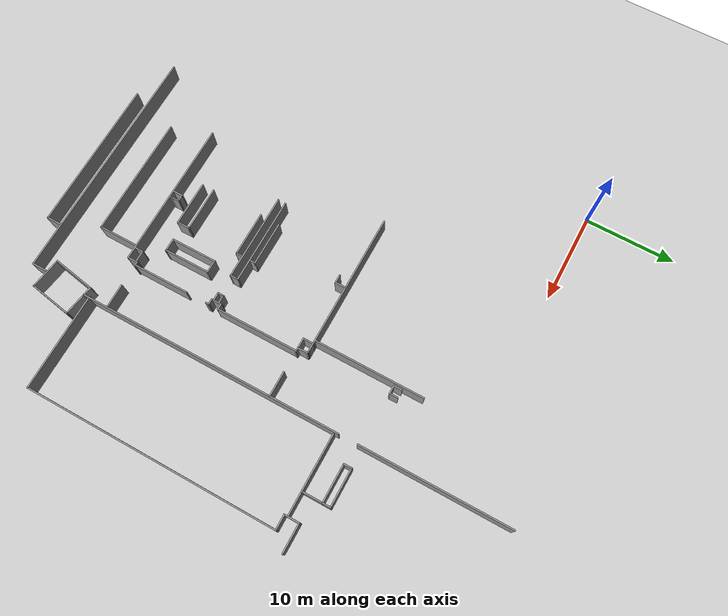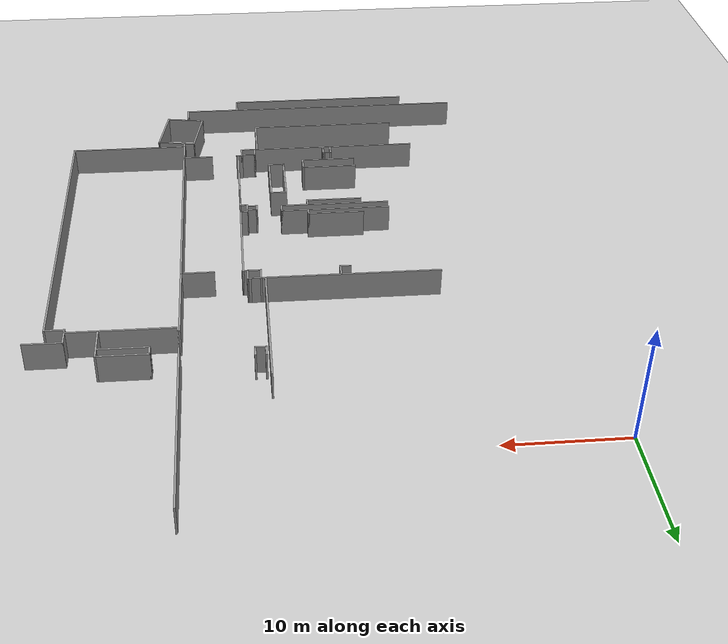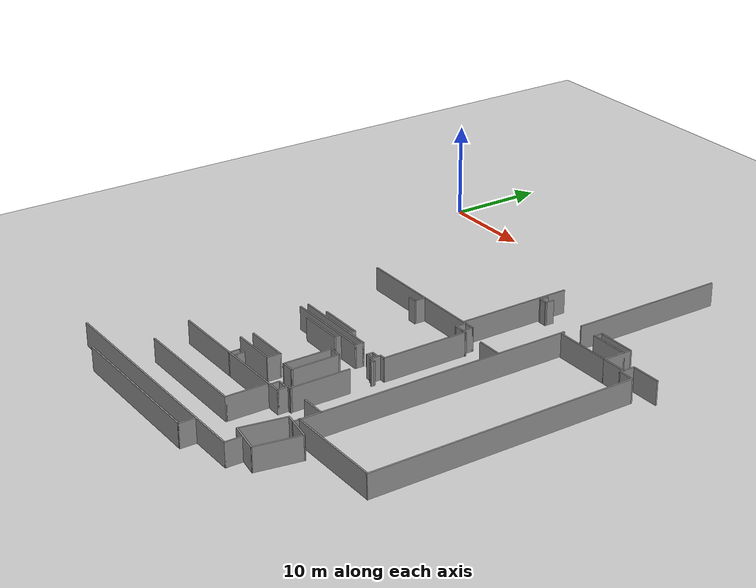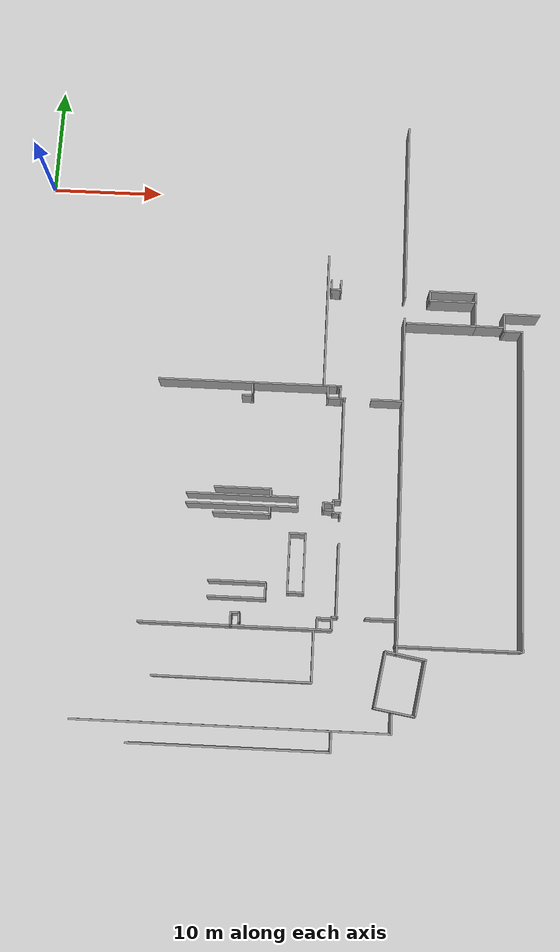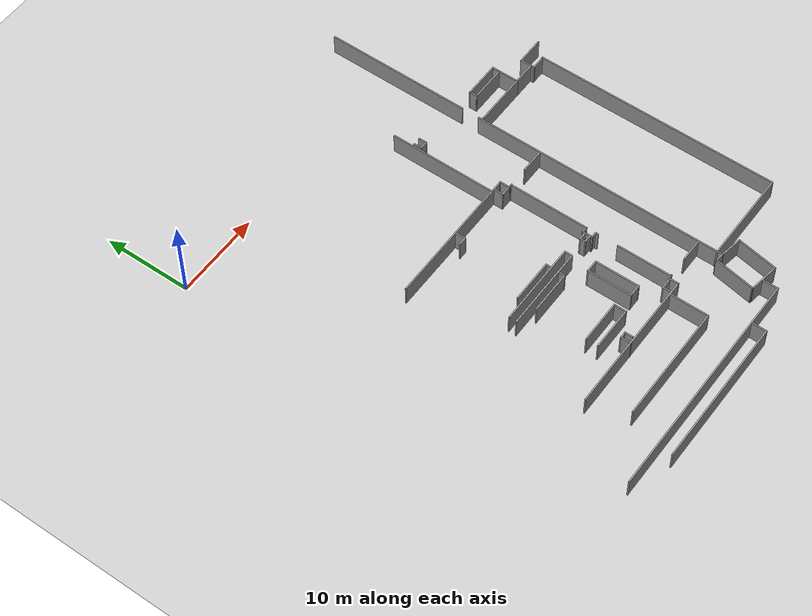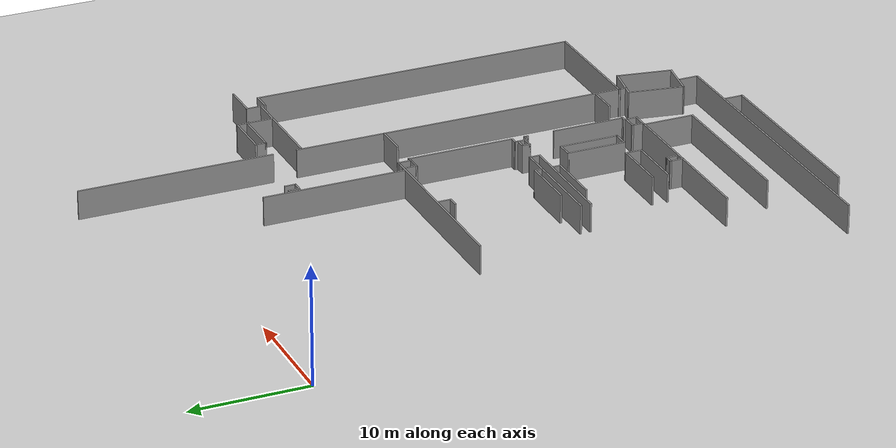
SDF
<sdf version="1.6">
 <world name="default">
  <model name="ground_plane">
   <static>1</static>
   <link name="link">
    <collision name="collision">
     <geometry><plane><normal>0 0 1</normal><size>100 100</size></plane></geometry>
     <surface><friction><ode><mu>100</mu><mu2>50</mu2></ode></friction></surface>
    </collision>
    <visual name="visual">
     <cast_shadows>0</cast_shadows>
     <geometry><plane><normal>0 0 1</normal><size>100 100</size></plane></geometry>
     <material>
      <script><uri>file://media/materials/scripts/gazebo.material</uri><name>Gazebo/Grey</name></script>
     </material>
    </visual>
   </link>
  </model>
  <model name="SEH_v11">
   <pose>0.537033 1.18809 0 0 -0 0</pose>
   <link name="Wall_114">
    <pose>32.5458 -18.3862 0 0 0 -1.5708</pose>
    <visual name="Wall_114_Visual_0">
     <pose>-15.5143 0 1.25 0 -0 0</pose>
     <geometry><box><size>16.7215 0.15 2.5</size></box></geometry>
     <material>
      <script><uri>file://media/materials/scripts/gazebo.material</uri><name>Gazebo/Grey</name></script>
      <ambient>1 1 1 1</ambient>
     </material>
     <meta><layer>0</layer></meta>
    </visual>
    <collision name="Wall_114_Collision_0">
     <geometry><box><size>16.7215 0.15 2.5</size></box></geometry>
     <pose>-15.5143 0 1.25 0 -0 0</pose>
    </collision>
    <visual name="Wall_114_Visual_1">
     <pose>9.36074 0 1.25 0 -0 0</pose>
     <geometry><box><size>29.0285 0.15 2.5</size></box></geometry>
     <material>
      <script><uri>file://media/materials/scripts/gazebo.material</uri><name>Gazebo/Grey</name></script>
      <ambient>1 1 1 1</ambient>
     </material>
     <meta><layer>0</layer></meta>
    </visual>
    <collision name="Wall_114_Collision_1">
     <geometry><box><size>29.0285 0.15 2.5</size></box></geometry>
     <pose>9.36074 0 1.25 0 -0 0</pose>
    </collision>
   </link>
   <link name="Wall_116">
    <collision name="Wall_116_Collision">
     <geometry><box><size>16 0.15 2.5</size></box></geometry>
     <pose>0 0 1.25 0 -0 0</pose>
    </collision>
    <visual name="Wall_116_Visual">
     <pose>0 0 1.25 0 -0 0</pose>
     <geometry><box><size>16 0.15 2.5</size></box></geometry>
     <material>
      <script><uri>file://media/materials/scripts/gazebo.material</uri><name>Gazebo/Grey</name></script>
      <ambient>1 1 1 1</ambient>
     </material>
     <meta><layer>0</layer></meta>
    </visual>
    <pose>18.846 -19.8363 0 0 -0 3.14159</pose>
   </link>
   <link name="Wall_127">
    <collision name="Wall_127_Collision">
     <geometry><box><size>16.5 0.15 2.5</size></box></geometry>
     <pose>0 0 1.25 0 -0 0</pose>
    </collision>
    <visual name="Wall_127_Visual">
     <pose>0 0 1.25 0 -0 0</pose>
     <geometry><box><size>16.5 0.15 2.5</size></box></geometry>
     <material>
      <script><uri>file://media/materials/scripts/gazebo.material</uri><name>Gazebo/Grey</name></script>
      <ambient>1 1 1 1</ambient>
     </material>
     <meta><layer>0</layer></meta>
    </visual>
    <pose>18.846 -41.0863 0 0 -0 0</pose>
   </link>
   <link name="Wall_128">
    <collision name="Wall_128_Collision">
     <geometry><box><size>1.25 0.15 2.5</size></box></geometry>
     <pose>0 0 1.25 0 -0 0</pose>
    </collision>
    <visual name="Wall_128_Visual">
     <pose>0 0 1.25 0 -0 0</pose>
     <geometry><box><size>1.25 0.15 2.5</size></box></geometry>
     <material>
      <script><uri>file://media/materials/scripts/gazebo.material</uri><name>Gazebo/Grey</name></script>
      <ambient>1 1 1 1</ambient>
     </material>
     <meta><layer>0</layer></meta>
    </visual>
    <pose>27.021 -40.5363 0 0 -0 1.5708</pose>
   </link>
   <link name="Wall_131">
    <collision name="Wall_131_Collision">
     <geometry><box><size>0.5 0.15 2.5</size></box></geometry>
     <pose>0 0 1.25 0 -0 0</pose>
    </collision>
    <visual name="Wall_131_Visual">
     <pose>0 0 1.25 0 -0 0</pose>
     <geometry><box><size>0.5 0.15 2.5</size></box></geometry>
     <material>
      <script><uri>file://media/materials/scripts/gazebo.material</uri><name>Gazebo/Grey</name></script>
      <ambient>1 1 1 1</ambient>
     </material>
     <meta><layer>0</layer></meta>
    </visual>
    <pose>27.196 -39.9863 0 0 -0 0</pose>
   </link>
   <link name="Wall_132">
    <pose>27.371 -35.5613 0 0 -0 1.5708</pose>
    <visual name="Wall_132_Visual_0">
     <pose>-1.34301 0 1.25 0 -0 0</pose>
     <geometry><box><size>6.31398 0.15 2.5</size></box></geometry>
     <material>
      <script><uri>file://media/materials/scripts/gazebo.material</uri><name>Gazebo/Grey</name></script>
      <ambient>1 1 1 1</ambient>
     </material>
     <meta><layer>0</layer></meta>
    </visual>
    <collision name="Wall_132_Collision_0">
     <geometry><box><size>6.31398 0.15 2.5</size></box></geometry>
     <pose>-1.34301 0 1.25 0 -0 0</pose>
    </collision>
    <visual name="Wall_132_Visual_1">
     <pose>4.28349 0 1.25 0 -0 0</pose>
     <geometry><box><size>0.433021 0.15 2.5</size></box></geometry>
     <material>
      <script><uri>file://media/materials/scripts/gazebo.material</uri><name>Gazebo/Grey</name></script>
      <ambient>1 1 1 1</ambient>
     </material>
     <meta><layer>0</layer></meta>
    </visual>
    <collision name="Wall_132_Collision_1">
     <geometry><box><size>0.433021 0.15 2.5</size></box></geometry>
     <pose>4.28349 0 1.25 0 -0 0</pose>
    </collision>
   </link>
   <link name="Wall_133">
    <collision name="Wall_133_Collision">
     <geometry><box><size>0.75 0.15 2.5</size></box></geometry>
     <pose>0 0 1.25 0 -0 0</pose>
    </collision>
    <visual name="Wall_133_Visual">
     <pose>0 0 1.25 0 -0 0</pose>
     <geometry><box><size>0.75 0.15 2.5</size></box></geometry>
     <material>
      <script><uri>file://media/materials/scripts/gazebo.material</uri><name>Gazebo/Grey</name></script>
      <ambient>1 1 1 1</ambient>
     </material>
     <meta><layer>0</layer></meta>
    </visual>
    <pose>27.071 -31.1363 0 0 -0 3.14159</pose>
   </link>
   <link name="Wall_134">
    <collision name="Wall_134_Collision">
     <geometry><box><size>1.25 0.15 2.5</size></box></geometry>
     <pose>0 0 1.25 0 -0 0</pose>
    </collision>
    <visual name="Wall_134_Visual">
     <pose>0 0 1.25 0 -0 0</pose>
     <geometry><box><size>1.25 0.15 2.5</size></box></geometry>
     <material>
      <script><uri>file://media/materials/scripts/gazebo.material</uri><name>Gazebo/Grey</name></script>
      <ambient>1 1 1 1</ambient>
     </material>
     <meta><layer>0</layer></meta>
    </visual>
    <pose>26.771 -30.5863 0 0 -0 1.5708</pose>
   </link>
   <link name="Wall_135">
    <collision name="Wall_135_Collision">
     <geometry><box><size>0.75 0.15 2.5</size></box></geometry>
     <pose>0 0 1.25 0 -0 0</pose>
    </collision>
    <visual name="Wall_135_Visual">
     <pose>0 0 1.25 0 -0 0</pose>
     <geometry><box><size>0.75 0.15 2.5</size></box></geometry>
     <material>
      <script><uri>file://media/materials/scripts/gazebo.material</uri><name>Gazebo/Grey</name></script>
      <ambient>1 1 1 1</ambient>
     </material>
     <meta><layer>0</layer></meta>
    </visual>
    <pose>27.071 -30.0362 0 0 -0 0.000333</pose>
   </link>
   <link name="Wall_147">
    <pose>29.921 -39.9863 0 0 -0 0</pose>
    <visual name="Wall_147_Visual_0">
     <pose>-2.49623 0 1.25 0 -0 0</pose>
     <geometry><box><size>0.257534 0.15 2.5</size></box></geometry>
     <material>
      <script><uri>file://media/materials/scripts/gazebo.material</uri><name>Gazebo/Grey</name></script>
      <ambient>1 1 1 1</ambient>
     </material>
     <meta><layer>0</layer></meta>
    </visual>
    <collision name="Wall_147_Collision_0">
     <geometry><box><size>0.257534 0.15 2.5</size></box></geometry>
     <pose>-2.49623 0 1.25 0 -0 0</pose>
    </collision>
    <visual name="Wall_147_Visual_1">
     <pose>1.27377 0 1.25 0 -0 0</pose>
     <geometry><box><size>2.70247 0.15 2.5</size></box></geometry>
     <material>
      <script><uri>file://media/materials/scripts/gazebo.material</uri><name>Gazebo/Grey</name></script>
      <ambient>1 1 1 1</ambient>
     </material>
     <meta><layer>0</layer></meta>
    </visual>
    <collision name="Wall_147_Collision_1">
     <geometry><box><size>2.70247 0.15 2.5</size></box></geometry>
     <pose>1.27377 0 1.25 0 -0 0</pose>
    </collision>
   </link>
   <link name="Wall_149">
    <collision name="Wall_149_Collision">
     <geometry><box><size>9.75 0.15 2.5</size></box></geometry>
     <pose>0 0 1.25 0 -0 0</pose>
    </collision>
    <visual name="Wall_149_Visual">
     <pose>0 0 1.25 0 -0 0</pose>
     <geometry><box><size>9.75 0.15 2.5</size></box></geometry>
     <material>
      <script><uri>file://media/materials/scripts/gazebo.material</uri><name>Gazebo/Grey</name></script>
      <ambient>1 1 1 1</ambient>
     </material>
     <meta><layer>0</layer></meta>
    </visual>
    <pose>18.8923 -29.9408 0 0 -0 0</pose>
   </link>
   <link name="Wall_150">
    <collision name="Wall_150_Collision">
     <geometry><box><size>1 0.15 2.5</size></box></geometry>
     <pose>0 0 1.25 0 -0 0</pose>
    </collision>
    <visual name="Wall_150_Visual">
     <pose>0 0 1.25 0 -0 0</pose>
     <geometry><box><size>1 0.15 2.5</size></box></geometry>
     <material>
      <script><uri>file://media/materials/scripts/gazebo.material</uri><name>Gazebo/Grey</name></script>
      <ambient>1 1 1 1</ambient>
     </material>
     <meta><layer>0</layer></meta>
    </visual>
    <pose>23.6923 -30.3658 0 0 0 -1.5708</pose>
   </link>
   <link name="Wall_151">
    <collision name="Wall_151_Collision">
     <geometry><box><size>9.75 0.15 2.5</size></box></geometry>
     <pose>0 0 1.25 0 -0 0</pose>
    </collision>
    <visual name="Wall_151_Visual">
     <pose>0 0 1.25 0 -0 0</pose>
     <geometry><box><size>9.75 0.15 2.5</size></box></geometry>
     <material>
      <script><uri>file://media/materials/scripts/gazebo.material</uri><name>Gazebo/Grey</name></script>
      <ambient>1 1 1 1</ambient>
     </material>
     <meta><layer>0</layer></meta>
    </visual>
    <pose>18.8923 -30.7908 0 0 -0 3.14159</pose>
   </link>
   <link name="Wall_155">
    <collision name="Wall_155_Collision">
     <geometry><box><size>5 0.15 2.5</size></box></geometry>
     <pose>0 0 1.25 0 -0 0</pose>
    </collision>
    <visual name="Wall_155_Visual">
     <pose>0 0 1.25 0 -0 0</pose>
     <geometry><box><size>5 0.15 2.5</size></box></geometry>
     <material>
      <script><uri>file://media/materials/scripts/gazebo.material</uri><name>Gazebo/Grey</name></script>
      <ambient>1 1 1 1</ambient>
     </material>
     <meta><layer>0</layer></meta>
    </visual>
    <pose>18.8999 -29.3084 0 0 -0 0</pose>
   </link>
   <link name="Wall_156">
    <collision name="Wall_156_Collision">
     <geometry><box><size>0.75 0.15 2.5</size></box></geometry>
     <pose>0 0 1.25 0 -0 0</pose>
    </collision>
    <visual name="Wall_156_Visual">
     <pose>0 0 1.25 0 -0 0</pose>
     <geometry><box><size>0.75 0.15 2.5</size></box></geometry>
     <material>
      <script><uri>file://media/materials/scripts/gazebo.material</uri><name>Gazebo/Grey</name></script>
      <ambient>1 1 1 1</ambient>
     </material>
     <meta><layer>0</layer></meta>
    </visual>
    <pose>21.3249 -29.6084 0 0 0 -1.5708</pose>
   </link>
   <link name="Wall_163">
    <collision name="Wall_163_Collision">
     <geometry><box><size>5 0.15 2.5</size></box></geometry>
     <pose>0 0 1.25 0 -0 0</pose>
    </collision>
    <visual name="Wall_163_Visual">
     <pose>0 0 1.25 0 -0 0</pose>
     <geometry><box><size>5 0.15 2.5</size></box></geometry>
     <material>
      <script><uri>file://media/materials/scripts/gazebo.material</uri><name>Gazebo/Grey</name></script>
      <ambient>1 1 1 1</ambient>
     </material>
     <meta><layer>0</layer></meta>
    </visual>
    <pose>18.8837 -31.5295 0 0 -0 0</pose>
   </link>
   <link name="Wall_164">
    <collision name="Wall_164_Collision">
     <geometry><box><size>0.75 0.15 2.5</size></box></geometry>
     <pose>0 0 1.25 0 -0 0</pose>
    </collision>
    <visual name="Wall_164_Visual">
     <pose>0 0 1.25 0 -0 0</pose>
     <geometry><box><size>0.75 0.15 2.5</size></box></geometry>
     <material>
      <script><uri>file://media/materials/scripts/gazebo.material</uri><name>Gazebo/Grey</name></script>
      <ambient>1 1 1 1</ambient>
     </material>
     <meta><layer>0</layer></meta>
    </visual>
    <pose>21.3087 -31.2295 0 0 -0 1.5708</pose>
   </link>
   <link name="Wall_168">
    <collision name="Wall_168_Collision">
     <geometry><box><size>12.25 0.15 2.5</size></box></geometry>
     <pose>0 0 1.25 0 -0 0</pose>
    </collision>
    <visual name="Wall_168_Visual">
     <pose>0 0 1.25 0 -0 0</pose>
     <geometry><box><size>12.25 0.15 2.5</size></box></geometry>
     <material>
      <script><uri>file://media/materials/scripts/gazebo.material</uri><name>Gazebo/Grey</name></script>
      <ambient>1 1 1 1</ambient>
     </material>
     <meta><layer>0</layer></meta>
    </visual>
    <pose>25.5461 -13.6978 0 0 0 -1.5708</pose>
   </link>
   <link name="Wall_17">
    <collision name="Wall_17_Collision">
     <geometry><box><size>4.84109 0.15 2.5</size></box></geometry>
     <pose>0 0 1.25 0 -0 0</pose>
    </collision>
    <visual name="Wall_17_Visual">
     <pose>0 0 1.25 0 -0 0</pose>
     <geometry><box><size>4.84109 0.15 2.5</size></box></geometry>
     <material>
      <script><uri>file://media/materials/scripts/gazebo.material</uri><name>Gazebo/Grey</name></script>
      <ambient>1 1 1 1</ambient>
     </material>
     <meta><layer>0</layer></meta>
    </visual>
    <pose>34.5912 -45.4997 0 0 -0 1.39856</pose>
   </link>
   <link name="Wall_177">
    <collision name="Wall_177_Collision">
     <geometry><box><size>1 0.15 2.5</size></box></geometry>
     <pose>0 0 1.25 0 -0 0</pose>
    </collision>
    <visual name="Wall_177_Visual">
     <pose>0 0 1.25 0 -0 0</pose>
     <geometry><box><size>1 0.15 2.5</size></box></geometry>
     <material>
      <script><uri>file://media/materials/scripts/gazebo.material</uri><name>Gazebo/Grey</name></script>
      <ambient>1 1 1 1</ambient>
     </material>
     <meta><layer>0</layer></meta>
    </visual>
    <pose>25.8684 -10.3601 0 0 0 -1.5708</pose>
   </link>
   <link name="Wall_178">
    <collision name="Wall_178_Collision">
     <geometry><box><size>1 0.15 2.5</size></box></geometry>
     <pose>0 0 1.25 0 -0 0</pose>
    </collision>
    <visual name="Wall_178_Visual">
     <pose>0 0 1.25 0 -0 0</pose>
     <geometry><box><size>1 0.15 2.5</size></box></geometry>
     <material>
      <script><uri>file://media/materials/scripts/gazebo.material</uri><name>Gazebo/Grey</name></script>
      <ambient>1 1 1 1</ambient>
     </material>
     <meta><layer>0</layer></meta>
    </visual>
    <pose>26.2934 -10.7851 0 0 -0 0</pose>
   </link>
   <link name="Wall_179">
    <collision name="Wall_179_Collision">
     <geometry><box><size>1 0.15 2.5</size></box></geometry>
     <pose>0 0 1.25 0 -0 0</pose>
    </collision>
    <visual name="Wall_179_Visual">
     <pose>0 0 1.25 0 -0 0</pose>
     <geometry><box><size>1 0.15 2.5</size></box></geometry>
     <material>
      <script><uri>file://media/materials/scripts/gazebo.material</uri><name>Gazebo/Grey</name></script>
      <ambient>1 1 1 1</ambient>
     </material>
     <meta><layer>0</layer></meta>
    </visual>
    <pose>26.7184 -10.3601 0 0 -0 1.5708</pose>
   </link>
   <link name="Wall_291">
    <collision name="Wall_291_Collision">
     <geometry><box><size>3.55888 0.15 2.5</size></box></geometry>
     <pose>0 0 1.25 0 -0 0</pose>
    </collision>
    <visual name="Wall_291_Visual">
     <pose>0 0 1.25 0 -0 0</pose>
     <geometry><box><size>3.55888 0.15 2.5</size></box></geometry>
     <material>
      <script><uri>file://media/materials/scripts/gazebo.material</uri><name>Gazebo/Grey</name></script>
      <ambient>1 1 1 1</ambient>
     </material>
     <meta><layer>0</layer></meta>
    </visual>
    <pose>32.5056 -47.545 0 0 -0 2.98521</pose>
   </link>
   <link name="Wall_293">
    <collision name="Wall_293_Collision">
     <geometry><box><size>3.55324 0.15 2.5</size></box></geometry>
     <pose>0 0 1.25 0 -0 0</pose>
    </collision>
    <visual name="Wall_293_Visual">
     <pose>0 0 1.25 0 -0 0</pose>
     <geometry><box><size>3.55324 0.15 2.5</size></box></geometry>
     <material>
      <script><uri>file://media/materials/scripts/gazebo.material</uri><name>Gazebo/Grey</name></script>
      <ambient>1 1 1 1</ambient>
     </material>
     <meta><layer>0</layer></meta>
    </visual>
    <pose>33.3149 -42.9084 0 0 0 -0.165528</pose>
   </link>
   <link name="Wall_295">
    <collision name="Wall_295_Collision">
     <geometry><box><size>4.87228 0.15 2.5</size></box></geometry>
     <pose>0 0 1.25 0 -0 0</pose>
    </collision>
    <visual name="Wall_295_Visual">
     <pose>0 0 1.25 0 -0 0</pose>
     <geometry><box><size>4.87228 0.15 2.5</size></box></geometry>
     <material>
      <script><uri>file://media/materials/scripts/gazebo.material</uri><name>Gazebo/Grey</name></script>
      <ambient>1 1 1 1</ambient>
     </material>
     <meta><layer>0</layer></meta>
    </visual>
    <pose>31.2292 -44.9538 0 0 0 -1.74415</pose>
   </link>
   <link name="Wall_297">
    <collision name="Wall_297_Collision">
     <geometry><box><size>0.75 0.15 2.5</size></box></geometry>
     <pose>0 0 1.25 0 -0 0</pose>
    </collision>
    <visual name="Wall_297_Visual">
     <pose>0 0 1.25 0 -0 0</pose>
     <geometry><box><size>0.75 0.15 2.5</size></box></geometry>
     <material>
      <script><uri>file://media/materials/scripts/gazebo.material</uri><name>Gazebo/Grey</name></script>
      <ambient>1 1 1 1</ambient>
     </material>
     <meta><layer>0</layer></meta>
    </visual>
    <pose>32.5458 -42.4862 0 0 0 -1.5708</pose>
   </link>
   <link name="Wall_322">
    <collision name="Wall_322_Collision">
     <geometry><box><size>9.25 0.15 2.5</size></box></geometry>
     <pose>0 0 1.25 0 -0 0</pose>
    </collision>
    <visual name="Wall_322_Visual">
     <pose>0 0 1.25 0 -0 0</pose>
     <geometry><box><size>9.25 0.15 2.5</size></box></geometry>
     <material>
      <script><uri>file://media/materials/scripts/gazebo.material</uri><name>Gazebo/Grey</name></script>
      <ambient>1 1 1 1</ambient>
     </material>
     <meta><layer>0</layer></meta>
    </visual>
    <pose>27.371 -25.4861 0 0 -0 1.5708</pose>
   </link>
   <link name="Wall_323">
    <collision name="Wall_323_Collision">
     <geometry><box><size>0.5 0.15 2.5</size></box></geometry>
     <pose>0 0 1.25 0 -0 0</pose>
    </collision>
    <visual name="Wall_323_Visual">
     <pose>0 0 1.25 0 -0 0</pose>
     <geometry><box><size>0.5 0.15 2.5</size></box></geometry>
     <material>
      <script><uri>file://media/materials/scripts/gazebo.material</uri><name>Gazebo/Grey</name></script>
      <ambient>1 1 1 1</ambient>
     </material>
     <meta><layer>0</layer></meta>
    </visual>
    <pose>27.196 -20.9361 0 0 -0 3.14159</pose>
   </link>
   <link name="Wall_324">
    <collision name="Wall_324_Collision">
     <geometry><box><size>1.25 0.15 2.5</size></box></geometry>
     <pose>0 0 1.25 0 -0 0</pose>
    </collision>
    <visual name="Wall_324_Visual">
     <pose>0 0 1.25 0 -0 0</pose>
     <geometry><box><size>1.25 0.15 2.5</size></box></geometry>
     <material>
      <script><uri>file://media/materials/scripts/gazebo.material</uri><name>Gazebo/Grey</name></script>
      <ambient>1 1 1 1</ambient>
     </material>
     <meta><layer>0</layer></meta>
    </visual>
    <pose>27.021 -20.3861 0 0 -0 1.5708</pose>
   </link>
   <link name="Wall_325">
    <collision name="Wall_325_Collision">
     <geometry><box><size>0.399926 0.15 2.5</size></box></geometry>
     <pose>0 0 1.25 0 -0 0</pose>
    </collision>
    <visual name="Wall_325_Visual">
     <pose>0 0 1.25 0 -0 0</pose>
     <geometry><box><size>0.399926 0.15 2.5</size></box></geometry>
     <material>
      <script><uri>file://media/materials/scripts/gazebo.material</uri><name>Gazebo/Grey</name></script>
      <ambient>1 1 1 1</ambient>
     </material>
     <meta><layer>0</layer></meta>
    </visual>
    <pose>26.896 -19.8362 0 0 0 -3.14079</pose>
   </link>
   <link name="Wall_329">
    <collision name="Wall_329_Collision">
     <geometry><box><size>1.25 0.15 2.5</size></box></geometry>
     <pose>0 0 1.25 0 -0 0</pose>
    </collision>
    <visual name="Wall_329_Visual">
     <pose>0 0 1.25 0 -0 0</pose>
     <geometry><box><size>1.25 0.15 2.5</size></box></geometry>
     <material>
      <script><uri>file://media/materials/scripts/gazebo.material</uri><name>Gazebo/Grey</name></script>
      <ambient>1 1 1 1</ambient>
     </material>
     <meta><layer>0</layer></meta>
    </visual>
    <pose>26.471 -20.9361 0 0 -0 3.14159</pose>
   </link>
   <link name="Wall_330">
    <collision name="Wall_330_Collision">
     <geometry><box><size>1.25 0.15 2.5</size></box></geometry>
     <pose>0 0 1.25 0 -0 0</pose>
    </collision>
    <visual name="Wall_330_Visual">
     <pose>0 0 1.25 0 -0 0</pose>
     <geometry><box><size>1.25 0.15 2.5</size></box></geometry>
     <material>
      <script><uri>file://media/materials/scripts/gazebo.material</uri><name>Gazebo/Grey</name></script>
      <ambient>1 1 1 1</ambient>
     </material>
     <meta><layer>0</layer></meta>
    </visual>
    <pose>25.921 -20.3861 0 0 -0 1.5708</pose>
   </link>
   <link name="Wall_332">
    <pose>29.921 -20.9361 0 0 -0 0</pose>
    <visual name="Wall_332_Visual_0">
     <pose>-2.52207 0 1.25 0 -0 0</pose>
     <geometry><box><size>0.205864 0.15 2.5</size></box></geometry>
     <material>
      <script><uri>file://media/materials/scripts/gazebo.material</uri><name>Gazebo/Grey</name></script>
      <ambient>1 1 1 1</ambient>
     </material>
     <meta><layer>0</layer></meta>
    </visual>
    <collision name="Wall_332_Collision_0">
     <geometry><box><size>0.205864 0.15 2.5</size></box></geometry>
     <pose>-2.52207 0 1.25 0 -0 0</pose>
    </collision>
    <visual name="Wall_332_Visual_1">
     <pose>1.22677 0 1.25 0 -0 0</pose>
     <geometry><box><size>2.79647 0.15 2.5</size></box></geometry>
     <material>
      <script><uri>file://media/materials/scripts/gazebo.material</uri><name>Gazebo/Grey</name></script>
      <ambient>1 1 1 1</ambient>
     </material>
     <meta><layer>0</layer></meta>
    </visual>
    <collision name="Wall_332_Collision_1">
     <geometry><box><size>2.79647 0.15 2.5</size></box></geometry>
     <pose>1.22677 0 1.25 0 -0 0</pose>
    </collision>
   </link>
   <link name="Wall_34">
    <collision name="Wall_34_Collision">
     <geometry><box><size>10.75 0.15 2.5</size></box></geometry>
     <pose>0 0 1.25 0 -0 0</pose>
    </collision>
    <visual name="Wall_34_Visual">
     <pose>0 0 1.25 0 -0 0</pose>
     <geometry><box><size>10.75 0.15 2.5</size></box></geometry>
     <material>
      <script><uri>file://media/materials/scripts/gazebo.material</uri><name>Gazebo/Grey</name></script>
      <ambient>1 1 1 1</ambient>
     </material>
     <meta><layer>0</layer></meta>
    </visual>
    <pose>37.7906 -42.1524 0 0 -0 0</pose>
   </link>
   <link name="Wall_340">
    <collision name="Wall_340_Collision">
     <geometry><box><size>1 0.15 2.5</size></box></geometry>
     <pose>0 0 1.25 0 -0 0</pose>
    </collision>
    <visual name="Wall_340_Visual">
     <pose>0 0 1.25 0 -0 0</pose>
     <geometry><box><size>1 0.15 2.5</size></box></geometry>
     <material>
      <script><uri>file://media/materials/scripts/gazebo.material</uri><name>Gazebo/Grey</name></script>
      <ambient>1 1 1 1</ambient>
     </material>
     <meta><layer>0</layer></meta>
    </visual>
    <pose>26.3352 -30.9156 0 0 -0 0</pose>
   </link>
   <link name="Wall_343">
    <collision name="Wall_343_Collision">
     <geometry><box><size>0.75 0.15 2.5</size></box></geometry>
     <pose>0 0 1.25 0 -0 0</pose>
    </collision>
    <visual name="Wall_343_Visual">
     <pose>0 0 1.25 0 -0 0</pose>
     <geometry><box><size>0.75 0.15 2.5</size></box></geometry>
     <material>
      <script><uri>file://media/materials/scripts/gazebo.material</uri><name>Gazebo/Grey</name></script>
      <ambient>1 1 1 1</ambient>
     </material>
     <meta><layer>0</layer></meta>
    </visual>
    <pose>25.9102 -30.6156 0 0 -0 1.5708</pose>
   </link>
   <link name="Wall_344">
    <collision name="Wall_344_Collision">
     <geometry><box><size>1 0.15 2.5</size></box></geometry>
     <pose>0 0 1.25 0 -0 0</pose>
    </collision>
    <visual name="Wall_344_Visual">
     <pose>0 0 1.25 0 -0 0</pose>
     <geometry><box><size>1 0.15 2.5</size></box></geometry>
     <material>
      <script><uri>file://media/materials/scripts/gazebo.material</uri><name>Gazebo/Grey</name></script>
      <ambient>1 1 1 1</ambient>
     </material>
     <meta><layer>0</layer></meta>
    </visual>
    <pose>26.3352 -30.3156 0 0 -0 0</pose>
   </link>
   <link name="Wall_347">
    <collision name="Wall_347_Collision">
     <geometry><box><size>1 0.15 2.5</size></box></geometry>
     <pose>0 0 1.25 0 -0 0</pose>
    </collision>
    <visual name="Wall_347_Visual">
     <pose>0 0 1.25 0 -0 0</pose>
     <geometry><box><size>1 0.15 2.5</size></box></geometry>
     <material>
      <script><uri>file://media/materials/scripts/gazebo.material</uri><name>Gazebo/Grey</name></script>
      <ambient>1 1 1 1</ambient>
     </material>
     <meta><layer>0</layer></meta>
    </visual>
    <pose>18.8155 -21.0081 0 0 -0 0</pose>
   </link>
   <link name="Wall_348">
    <collision name="Wall_348_Collision">
     <geometry><box><size>1.25 0.15 2.5</size></box></geometry>
     <pose>0 0 1.25 0 -0 0</pose>
    </collision>
    <visual name="Wall_348_Visual">
     <pose>0 0 1.25 0 -0 0</pose>
     <geometry><box><size>1.25 0.15 2.5</size></box></geometry>
     <material>
      <script><uri>file://media/materials/scripts/gazebo.material</uri><name>Gazebo/Grey</name></script>
      <ambient>1 1 1 1</ambient>
     </material>
     <meta><layer>0</layer></meta>
    </visual>
    <pose>19.2405 -20.4581 0 0 -0 1.5708</pose>
   </link>
   <link name="Wall_35">
    <collision name="Wall_35_Collision">
     <geometry><box><size>28.25 0.15 2.5</size></box></geometry>
     <pose>0 0 1.25 0 -0 0</pose>
    </collision>
    <visual name="Wall_35_Visual">
     <pose>0 0 1.25 0 -0 0</pose>
     <geometry><box><size>28.25 0.15 2.5</size></box></geometry>
     <material>
      <script><uri>file://media/materials/scripts/gazebo.material</uri><name>Gazebo/Grey</name></script>
      <ambient>1 1 1 1</ambient>
     </material>
     <meta><layer>0</layer></meta>
    </visual>
    <pose>43.0906 -28.1024 0 0 -0 1.5708</pose>
   </link>
   <link name="Wall_356">
    <collision name="Wall_356_Collision">
     <geometry><box><size>1.25 0.15 2.5</size></box></geometry>
     <pose>0 0 1.25 0 -0 0</pose>
    </collision>
    <visual name="Wall_356_Visual">
     <pose>0 0 1.25 0 -0 0</pose>
     <geometry><box><size>1.25 0.15 2.5</size></box></geometry>
     <material>
      <script><uri>file://media/materials/scripts/gazebo.material</uri><name>Gazebo/Grey</name></script>
      <ambient>1 1 1 1</ambient>
     </material>
     <meta><layer>0</layer></meta>
    </visual>
    <pose>18.4639 -40.5402 0 0 0 -1.5708</pose>
   </link>
   <link name="Wall_36">
    <collision name="Wall_36_Collision">
     <geometry><box><size>1.75 0.15 2.5</size></box></geometry>
     <pose>0 0 1.25 0 -0 0</pose>
    </collision>
    <visual name="Wall_36_Visual">
     <pose>0 0 1.25 0 -0 0</pose>
     <geometry><box><size>1.75 0.15 2.5</size></box></geometry>
     <material>
      <script><uri>file://media/materials/scripts/gazebo.material</uri><name>Gazebo/Grey</name></script>
      <ambient>1 1 1 1</ambient>
     </material>
     <meta><layer>0</layer></meta>
    </visual>
    <pose>42.2906 -14.0524 0 0 -0 3.14159</pose>
   </link>
   <link name="Wall_360">
    <collision name="Wall_360_Collision">
     <geometry><box><size>0.75 0.15 2.5</size></box></geometry>
     <pose>0 0 1.25 0 -0 0</pose>
    </collision>
    <visual name="Wall_360_Visual">
     <pose>0 0 1.25 0 -0 0</pose>
     <geometry><box><size>0.75 0.15 2.5</size></box></geometry>
     <material>
      <script><uri>file://media/materials/scripts/gazebo.material</uri><name>Gazebo/Grey</name></script>
      <ambient>1 1 1 1</ambient>
     </material>
     <meta><layer>0</layer></meta>
    </visual>
    <pose>18.7639 -39.9902 0 0 -0 0</pose>
   </link>
   <link name="Wall_361">
    <collision name="Wall_361_Collision">
     <geometry><box><size>0.25 0.15 2.5</size></box></geometry>
     <pose>0 0 1.25 0 -0 0</pose>
    </collision>
    <visual name="Wall_361_Visual">
     <pose>0 0 1.25 0 -0 0</pose>
     <geometry><box><size>0.25 0.15 2.5</size></box></geometry>
     <material>
      <script><uri>file://media/materials/scripts/gazebo.material</uri><name>Gazebo/Grey</name></script>
      <ambient>1 1 1 1</ambient>
     </material>
     <meta><layer>0</layer></meta>
    </visual>
    <pose>19.1139 -39.9902 0 0 -0 0</pose>
   </link>
   <link name="Wall_362">
    <collision name="Wall_362_Collision">
     <geometry><box><size>1 0.15 2.5</size></box></geometry>
     <pose>0 0 1.25 0 -0 0</pose>
    </collision>
    <visual name="Wall_362_Visual">
     <pose>0 0 1.25 0 -0 0</pose>
     <geometry><box><size>1 0.15 2.5</size></box></geometry>
     <material>
      <script><uri>file://media/materials/scripts/gazebo.material</uri><name>Gazebo/Grey</name></script>
      <ambient>1 1 1 1</ambient>
     </material>
     <meta><layer>0</layer></meta>
    </visual>
    <pose>19.1639 -40.4152 0 0 0 -1.5708</pose>
   </link>
   <link name="Wall_363">
    <collision name="Wall_363_Collision">
     <geometry><box><size>0.15 0.15 2.5</size></box></geometry>
     <pose>0 0 1.25 0 -0 0</pose>
    </collision>
    <visual name="Wall_363_Visual">
     <pose>0 0 1.25 0 -0 0</pose>
     <geometry><box><size>0.15 0.15 2.5</size></box></geometry>
     <material>
      <script><uri>file://media/materials/scripts/gazebo.material</uri><name>Gazebo/Grey</name></script>
      <ambient>1 1 1 1</ambient>
     </material>
     <meta><layer>0</layer></meta>
    </visual>
    <pose>19.1639 -40.8402 0 0 -0 0</pose>
   </link>
   <link name="Wall_364">
    <collision name="Wall_364_Collision">
     <geometry><box><size>0.25 0.15 2.5</size></box></geometry>
     <pose>0 0 1.25 0 -0 0</pose>
    </collision>
    <visual name="Wall_364_Visual">
     <pose>0 0 1.25 0 -0 0</pose>
     <geometry><box><size>0.25 0.15 2.5</size></box></geometry>
     <material>
      <script><uri>file://media/materials/scripts/gazebo.material</uri><name>Gazebo/Grey</name></script>
      <ambient>1 1 1 1</ambient>
     </material>
     <meta><layer>0</layer></meta>
    </visual>
    <pose>19.1639 -40.8902 0 0 0 -1.5708</pose>
   </link>
   <link name="Wall_366">
    <collision name="Wall_366_Collision">
     <geometry><box><size>1.25 0.15 2.5</size></box></geometry>
     <pose>0 0 1.25 0 -0 0</pose>
    </collision>
    <visual name="Wall_366_Visual">
     <pose>0 0 1.25 0 -0 0</pose>
     <geometry><box><size>1.25 0.15 2.5</size></box></geometry>
     <material>
      <script><uri>file://media/materials/scripts/gazebo.material</uri><name>Gazebo/Grey</name></script>
      <ambient>1 1 1 1</ambient>
     </material>
     <meta><layer>0</layer></meta>
    </visual>
    <pose>26.3289 -40.1298 0 0 -0 0</pose>
   </link>
   <link name="Wall_368">
    <collision name="Wall_368_Collision">
     <geometry><box><size>1 0.15 2.5</size></box></geometry>
     <pose>0 0 1.25 0 -0 0</pose>
    </collision>
    <visual name="Wall_368_Visual">
     <pose>0 0 1.25 0 -0 0</pose>
     <geometry><box><size>1 0.15 2.5</size></box></geometry>
     <material>
      <script><uri>file://media/materials/scripts/gazebo.material</uri><name>Gazebo/Grey</name></script>
      <ambient>1 1 1 1</ambient>
     </material>
     <meta><layer>0</layer></meta>
    </visual>
    <pose>25.7789 -40.5548 0 0 0 -1.5708</pose>
   </link>
   <link name="Wall_37">
    <collision name="Wall_37_Collision">
     <geometry><box><size>1.75 0.15 2.5</size></box></geometry>
     <pose>0 0 1.25 0 -0 0</pose>
    </collision>
    <visual name="Wall_37_Visual">
     <pose>0 0 1.25 0 -0 0</pose>
     <geometry><box><size>1.75 0.15 2.5</size></box></geometry>
     <material>
      <script><uri>file://media/materials/scripts/gazebo.material</uri><name>Gazebo/Grey</name></script>
      <ambient>1 1 1 1</ambient>
     </material>
     <meta><layer>0</layer></meta>
    </visual>
    <pose>41.4906 -13.2524 0 0 -0 1.5708</pose>
   </link>
   <link name="Wall_38">
    <collision name="Wall_38_Collision">
     <geometry><box><size>3.25 0.15 2.5</size></box></geometry>
     <pose>0 0 1.25 0 -0 0</pose>
    </collision>
    <visual name="Wall_38_Visual">
     <pose>0 0 1.25 0 -0 0</pose>
     <geometry><box><size>3.25 0.15 2.5</size></box></geometry>
     <material>
      <script><uri>file://media/materials/scripts/gazebo.material</uri><name>Gazebo/Grey</name></script>
      <ambient>1 1 1 1</ambient>
     </material>
     <meta><layer>0</layer></meta>
    </visual>
    <pose>43.0406 -12.4524 0 0 -0 0</pose>
   </link>
   <link name="Wall_394">
    <collision name="Wall_394_Collision">
     <geometry><box><size>13.5 0.15 2.5</size></box></geometry>
     <pose>0 0 1.25 0 -0 0</pose>
    </collision>
    <visual name="Wall_394_Visual">
     <pose>0 0 1.25 0 -0 0</pose>
     <geometry><box><size>13.5 0.15 2.5</size></box></geometry>
     <material>
      <script><uri>file://media/materials/scripts/gazebo.material</uri><name>Gazebo/Grey</name></script>
      <ambient>1 1 1 1</ambient>
     </material>
     <meta><layer>0</layer></meta>
    </visual>
    <pose>18.8442 -45.4622 0 0 -0 0</pose>
   </link>
   <link name="Wall_395">
    <collision name="Wall_395_Collision">
     <geometry><box><size>4.5 0.15 2.5</size></box></geometry>
     <pose>0 0 1.25 0 -0 0</pose>
    </collision>
    <visual name="Wall_395_Visual">
     <pose>0 0 1.25 0 -0 0</pose>
     <geometry><box><size>4.5 0.15 2.5</size></box></geometry>
     <material>
      <script><uri>file://media/materials/scripts/gazebo.material</uri><name>Gazebo/Grey</name></script>
      <ambient>1 1 1 1</ambient>
     </material>
     <meta><layer>0</layer></meta>
    </visual>
    <pose>25.5192 -43.2872 0 0 -0 1.5708</pose>
   </link>
   <link name="Wall_399">
    <collision name="Wall_399_Collision">
     <geometry><box><size>1.5 0.15 2.5</size></box></geometry>
     <pose>0 0 1.25 0 -0 0</pose>
    </collision>
    <visual name="Wall_399_Visual">
     <pose>0 0 1.25 0 -0 0</pose>
     <geometry><box><size>1.5 0.15 2.5</size></box></geometry>
     <material>
      <script><uri>file://media/materials/scripts/gazebo.material</uri><name>Gazebo/Grey</name></script>
      <ambient>1 1 1 1</ambient>
     </material>
     <meta><layer>0</layer></meta>
    </visual>
    <pose>23.8114 -33.0723 0 0 -0 3.14159</pose>
   </link>
   <link name="Wall_401">
    <collision name="Wall_401_Collision">
     <geometry><box><size>5.17459 0.15 2.5</size></box></geometry>
     <pose>0 0 1.25 0 -0 0</pose>
    </collision>
    <visual name="Wall_401_Visual">
     <pose>0 0 1.25 0 -0 0</pose>
     <geometry><box><size>5.17459 0.15 2.5</size></box></geometry>
     <material>
      <script><uri>file://media/materials/scripts/gazebo.material</uri><name>Gazebo/Grey</name></script>
      <ambient>1 1 1 1</ambient>
     </material>
     <meta><layer>0</layer></meta>
    </visual>
    <pose>23.1364 -35.5846 0 0 0 -1.5708</pose>
   </link>
   <link name="Wall_402">
    <collision name="Wall_402_Collision">
     <geometry><box><size>1.5 0.15 2.5</size></box></geometry>
     <pose>0 0 1.25 0 -0 0</pose>
    </collision>
    <visual name="Wall_402_Visual">
     <pose>0 0 1.25 0 -0 0</pose>
     <geometry><box><size>1.5 0.15 2.5</size></box></geometry>
     <material>
      <script><uri>file://media/materials/scripts/gazebo.material</uri><name>Gazebo/Grey</name></script>
      <ambient>1 1 1 1</ambient>
     </material>
     <meta><layer>0</layer></meta>
    </visual>
    <pose>23.8436 -38.0968 0 0 -0 0</pose>
   </link>
   <link name="Wall_403">
    <collision name="Wall_403_Collision">
     <geometry><box><size>5.17459 0.15 2.5</size></box></geometry>
     <pose>0 0 1.25 0 -0 0</pose>
    </collision>
    <visual name="Wall_403_Visual">
     <pose>0 0 1.25 0 -0 0</pose>
     <geometry><box><size>5.17459 0.15 2.5</size></box></geometry>
     <material>
      <script><uri>file://media/materials/scripts/gazebo.material</uri><name>Gazebo/Grey</name></script>
      <ambient>1 1 1 1</ambient>
     </material>
     <meta><layer>0</layer></meta>
    </visual>
    <pose>24.4864 -35.5846 0 0 -0 1.5708</pose>
   </link>
   <link name="Wall_414">
    <collision name="Wall_414_Collision">
     <geometry><box><size>5 0.15 2.5</size></box></geometry>
     <pose>0 0 1.25 0 -0 0</pose>
    </collision>
    <visual name="Wall_414_Visual">
     <pose>0 0 1.25 0 -0 0</pose>
     <geometry><box><size>5 0.15 2.5</size></box></geometry>
     <material>
      <script><uri>file://media/materials/scripts/gazebo.material</uri><name>Gazebo/Grey</name></script>
      <ambient>1 1 1 1</ambient>
     </material>
     <meta><layer>0</layer></meta>
    </visual>
    <pose>18.8408 -38.7221 0 0 -0 0</pose>
   </link>
   <link name="Wall_415">
    <collision name="Wall_415_Collision">
     <geometry><box><size>1.5 0.15 2.5</size></box></geometry>
     <pose>0 0 1.25 0 -0 0</pose>
    </collision>
    <visual name="Wall_415_Visual">
     <pose>0 0 1.25 0 -0 0</pose>
     <geometry><box><size>1.5 0.15 2.5</size></box></geometry>
     <material>
      <script><uri>file://media/materials/scripts/gazebo.material</uri><name>Gazebo/Grey</name></script>
      <ambient>1 1 1 1</ambient>
     </material>
     <meta><layer>0</layer></meta>
    </visual>
    <pose>21.2658 -38.0471 0 0 -0 1.5708</pose>
   </link>
   <link name="Wall_416">
    <collision name="Wall_416_Collision">
     <geometry><box><size>5 0.15 2.5</size></box></geometry>
     <pose>0 0 1.25 0 -0 0</pose>
    </collision>
    <visual name="Wall_416_Visual">
     <pose>0 0 1.25 0 -0 0</pose>
     <geometry><box><size>5 0.15 2.5</size></box></geometry>
     <material>
      <script><uri>file://media/materials/scripts/gazebo.material</uri><name>Gazebo/Grey</name></script>
      <ambient>1 1 1 1</ambient>
     </material>
     <meta><layer>0</layer></meta>
    </visual>
    <pose>18.8408 -37.3721 0 0 -0 3.14159</pose>
   </link>
   <link name="Wall_482">
    <collision name="Wall_482_Collision">
     <geometry><box><size>6.25 0.15 2.5</size></box></geometry>
     <pose>0 0 1.25 0 -0 0</pose>
    </collision>
    <visual name="Wall_482_Visual">
     <pose>0 0 1.25 0 -0 0</pose>
     <geometry><box><size>6.25 0.15 2.5</size></box></geometry>
     <material>
      <script><uri>file://media/materials/scripts/gazebo.material</uri><name>Gazebo/Grey</name></script>
      <ambient>1 1 1 1</ambient>
     </material>
     <meta><layer>0</layer></meta>
    </visual>
    <pose>35.8365 -13.6875 0 0 -0 0</pose>
   </link>
   <link name="Wall_483">
    <collision name="Wall_483_Collision">
     <geometry><box><size>3.25 0.15 2.5</size></box></geometry>
     <pose>0 0 1.25 0 -0 0</pose>
    </collision>
    <visual name="Wall_483_Visual">
     <pose>0 0 1.25 0 -0 0</pose>
     <geometry><box><size>3.25 0.15 2.5</size></box></geometry>
     <material>
      <script><uri>file://media/materials/scripts/gazebo.material</uri><name>Gazebo/Grey</name></script>
      <ambient>1 1 1 1</ambient>
     </material>
     <meta><layer>0</layer></meta>
    </visual>
    <pose>38.8865 -12.1375 0 0 -0 1.5708</pose>
   </link>
   <link name="Wall_484">
    <collision name="Wall_484_Collision">
     <geometry><box><size>4.25 0.15 2.5</size></box></geometry>
     <pose>0 0 1.25 0 -0 0</pose>
    </collision>
    <visual name="Wall_484_Visual">
     <pose>0 0 1.25 0 -0 0</pose>
     <geometry><box><size>4.25 0.15 2.5</size></box></geometry>
     <material>
      <script><uri>file://media/materials/scripts/gazebo.material</uri><name>Gazebo/Grey</name></script>
      <ambient>1 1 1 1</ambient>
     </material>
     <meta><layer>0</layer></meta>
    </visual>
    <pose>36.8365 -10.5875 0 0 -0 3.14159</pose>
   </link>
   <link name="Wall_494">
    <collision name="Wall_494_Collision">
     <geometry><box><size>1 0.15 2.5</size></box></geometry>
     <pose>0 0 1.25 0 -0 0</pose>
    </collision>
    <visual name="Wall_494_Visual">
     <pose>0 0 1.25 0 -0 0</pose>
     <geometry><box><size>1 0.15 2.5</size></box></geometry>
     <material>
      <script><uri>file://media/materials/scripts/gazebo.material</uri><name>Gazebo/Grey</name></script>
      <ambient>1 1 1 1</ambient>
     </material>
     <meta><layer>0</layer></meta>
    </visual>
    <pose>34.7865 -11.0125 0 0 0 -1.5708</pose>
   </link>
   <link name="Wall_495">
    <collision name="Wall_495_Collision">
     <geometry><box><size>4.25 0.15 2.5</size></box></geometry>
     <pose>0 0 1.25 0 -0 0</pose>
    </collision>
    <visual name="Wall_495_Visual">
     <pose>0 0 1.25 0 -0 0</pose>
     <geometry><box><size>4.25 0.15 2.5</size></box></geometry>
     <material>
      <script><uri>file://media/materials/scripts/gazebo.material</uri><name>Gazebo/Grey</name></script>
      <ambient>1 1 1 1</ambient>
     </material>
     <meta><layer>0</layer></meta>
    </visual>
    <pose>36.8365 -11.4375 0 0 -0 0</pose>
   </link>
   <link name="Wall_497">
    <collision name="Wall_497_Collision">
     <geometry><box><size>2.75 0.15 2.5</size></box></geometry>
     <pose>0 0 1.25 0 -0 0</pose>
    </collision>
    <visual name="Wall_497_Visual">
     <pose>0 0 1.25 0 -0 0</pose>
     <geometry><box><size>2.75 0.15 2.5</size></box></geometry>
     <material>
      <script><uri>file://media/materials/scripts/gazebo.material</uri><name>Gazebo/Grey</name></script>
      <ambient>1 1 1 1</ambient>
     </material>
     <meta><layer>0</layer></meta>
    </visual>
    <pose>40.1865 -13.6875 0 0 -0 0</pose>
   </link>
   <link name="Wall_6">
    <collision name="Wall_6_Collision">
     <geometry><box><size>26.75 0.15 2.5</size></box></geometry>
     <pose>0 0 1.25 0 -0 0</pose>
    </collision>
    <visual name="Wall_6_Visual">
     <pose>0 0 1.25 0 -0 0</pose>
     <geometry><box><size>26.75 0.15 2.5</size></box></geometry>
     <material>
      <script><uri>file://media/materials/scripts/gazebo.material</uri><name>Gazebo/Grey</name></script>
      <ambient>1 1 1 1</ambient>
     </material>
     <meta><layer>0</layer></meta>
    </visual>
    <pose>18.9458 -49.2862 0 0 -0 0</pose>
   </link>
   <link name="Wall_7">
    <collision name="Wall_7_Collision">
     <geometry><box><size>1.75 0.15 2.5</size></box></geometry>
     <pose>0 0 1.25 0 -0 0</pose>
    </collision>
    <visual name="Wall_7_Visual">
     <pose>0 0 1.25 0 -0 0</pose>
     <geometry><box><size>1.75 0.15 2.5</size></box></geometry>
     <material>
      <script><uri>file://media/materials/scripts/gazebo.material</uri><name>Gazebo/Grey</name></script>
      <ambient>1 1 1 1</ambient>
     </material>
     <meta><layer>0</layer></meta>
    </visual>
    <pose>32.2458 -48.4862 0 0 -0 1.5708</pose>
   </link>
   <link name="Wall_95">
    <collision name="Wall_95_Collision">
     <geometry><box><size>17 0.15 2.5</size></box></geometry>
     <pose>0 0 1.25 0 -0 0</pose>
    </collision>
    <visual name="Wall_95_Visual">
     <pose>0 0 1.25 0 -0 0</pose>
     <geometry><box><size>17 0.15 2.5</size></box></geometry>
     <material>
      <script><uri>file://media/materials/scripts/gazebo.material</uri><name>Gazebo/Grey</name></script>
      <ambient>1 1 1 1</ambient>
     </material>
     <meta><layer>0</layer></meta>
    </visual>
    <pose>18.8797 -50.9633 0 0 -0 0</pose>
   </link>
   <link name="Wall_96">
    <collision name="Wall_96_Collision">
     <geometry><box><size>1.75 0.15 2.5</size></box></geometry>
     <pose>0 0 1.25 0 -0 0</pose>
    </collision>
    <visual name="Wall_96_Visual">
     <pose>0 0 1.25 0 -0 0</pose>
     <geometry><box><size>1.75 0.15 2.5</size></box></geometry>
     <material>
      <script><uri>file://media/materials/scripts/gazebo.material</uri><name>Gazebo/Grey</name></script>
      <ambient>1 1 1 1</ambient>
     </material>
     <meta><layer>0</layer></meta>
    </visual>
    <pose>27.3047 -50.1633 0 0 -0 1.5708</pose>
   </link>
   <static>1</static>
  </model>
 </world>
</sdf>
